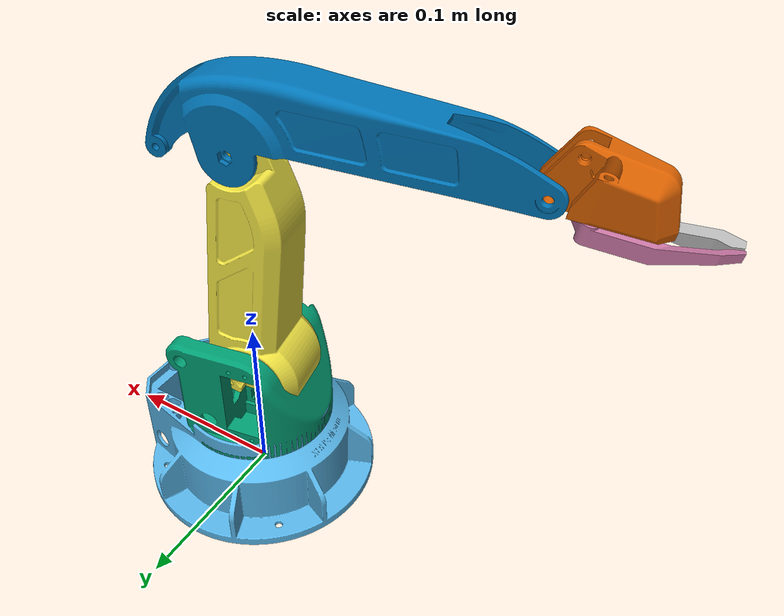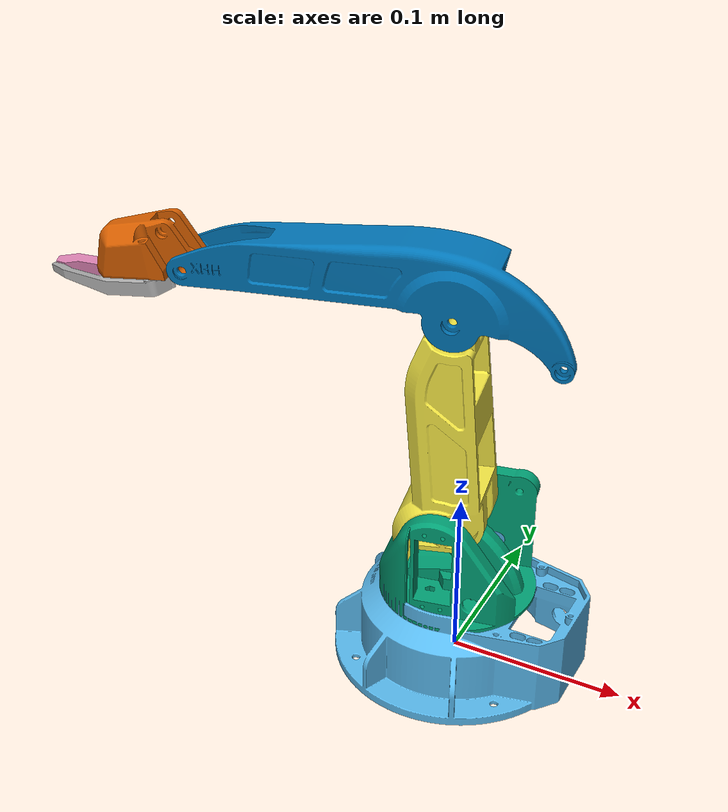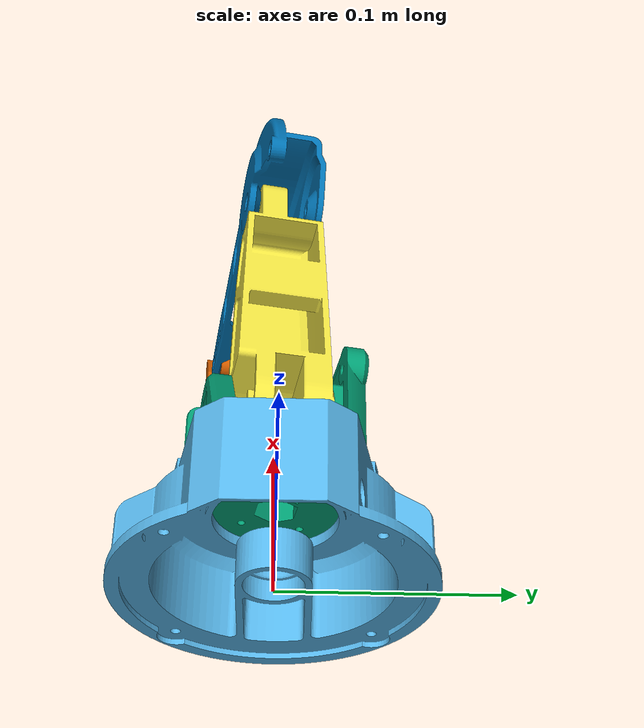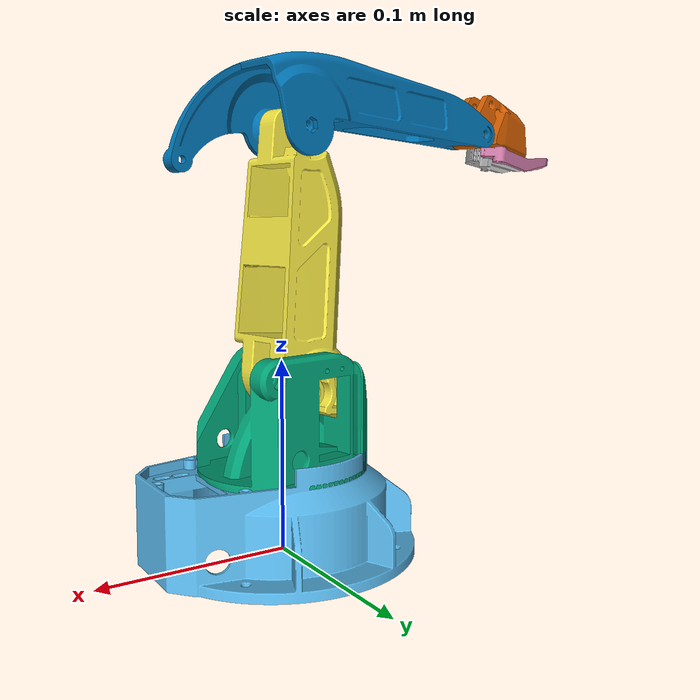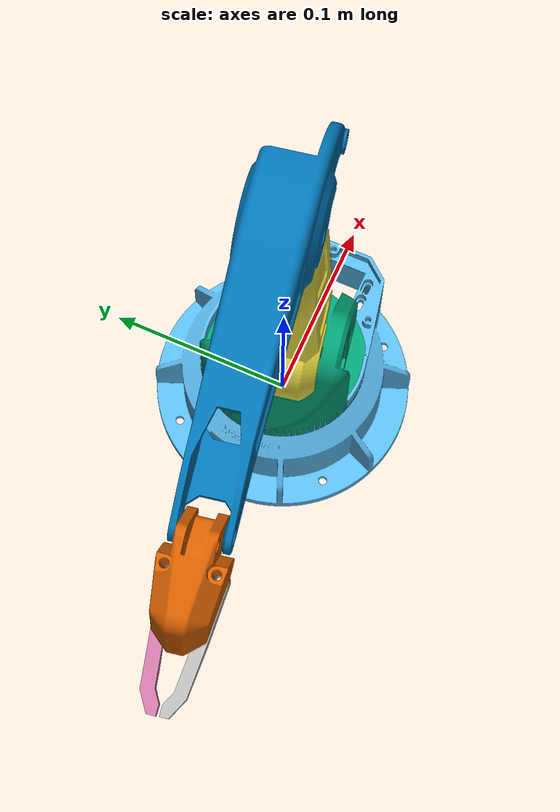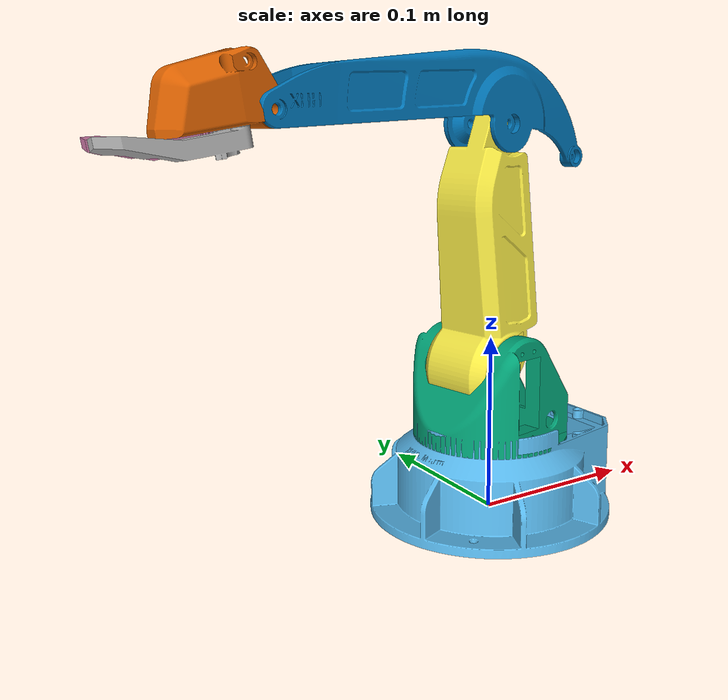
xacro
<?xml version="1.0"?>
<robot xmlns:xacro="http://www.ros.org/wiki/xacro" name="Robot_Arm_Urdf">
    <xacro:arg name="initial_positions_file" default="initial_positions.yaml" />

    <!-- Import Robot_Arm_Urdf urdf file -->
    <xacro:include filename="$(find dolphin_arm_description)/urdf/robot_arm_moveit_urdf.urdf.xacro" />

    <!-- Import control_xacro -->
    <xacro:include filename="Robot_Arm_Urdf.ros2_control.xacro" />

    <xacro:Robot_Arm_Urdf_ros2_control name="FakeSystem" initial_positions_file="$(arg initial_positions_file)"/>

</robot>

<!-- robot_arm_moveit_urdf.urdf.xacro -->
<robot name="Robot_Arm_Urdf" xmlns:xacro="http://www.ros.org/wiki/xacro">
    <xacro:property name="pkg_share" value="$(find dolphin_arm_description)"/>

    <link name="base_link"/>
    <link name="Fixed_Base">
        <inertial>
            <origin xyz="-0.0023084211370622484 0.0228471808858331 6.92692255730673e-05" rpy="0.0 0.0 0.0" />
            <mass value="0.8445906258395853" />
            <inertia ixx="0.001221182780015992" iyy="0.002203963262386244" izz="0.0013408588392549766" ixy="-6.71713136515516e-05" iyz="4.648997523226265e-07" ixz="-3.21079034325289e-06" />
        </inertial>
        <visual name="Fixed_Base_visual">
            <origin xyz="0.0 0.0 0.0" rpy="0.0 0.0 0.0" />
            <geometry>
                <mesh filename="file://${pkg_share}/meshes/Fixed_Base.stl" scale="0.001 0.001 0.001" />
            </geometry>
        </visual>
        <collision name="Fixed_Base_collision">
            <origin xyz="0.0 0.0 0.0" rpy="0.0 0.0 0.0" />
            <geometry>
                <mesh filename="file://${pkg_share}/meshes/Fixed_Base.stl" scale="0.001 0.001 0.001" />
            </geometry>
        </collision>
    </link>
    <link name="Rotary_Base">
        <inertial>
            <origin xyz="-0.0015615202986804231 -0.001328992332780706 -0.01920587720435263" rpy="0.0 -0.0 0.0" />
            <mass value="0.7237496671944533" />
            <inertia ixx="0.0006154232686175499" iyy="0.0005865774337070231" izz="0.0006601648629478627" ixy="2.0518610349967523e-05" iyz="-3.150402130999297e-05" ixz="2.98059870092668e-06" />
        </inertial>
        <visual name="Rotary_Base_visual">
            <origin xyz="-5.610539924520725e-36 -3.029981214983867e-35 -4.440892098500626e-18" rpy="-1.5707963267948966 7.135756977348252e-17 -0.18309370107971504" />
            <geometry>
                <mesh filename="file://${pkg_share}/meshes/Rotary_Base.stl" scale="0.001 0.001 0.001" />
            </geometry>
        </visual>
        <collision name="Rotary_Base_collision">
            <origin xyz="-5.610539924520725e-36 -3.029981214983867e-35 -4.440892098500626e-18" rpy="-1.5707963267948966 7.135756977348252e-17 -0.18309370107971504" />
            <geometry>
                <mesh filename="file://${pkg_share}/meshes/Rotary_Base.stl" scale="0.001 0.001 0.001" />
            </geometry>
        </collision>
    </link>
    <link name="BC_Connecting_Rod">
        <inertial>
            <origin xyz="-0.003108924053050823 -0.05263309481890554 0.0041842438499858905" rpy="0.0 -0.0 6.842277657836022e-49" />
            <mass value="0.5964512737032673" />
            <inertia ixx="0.0012764161078618083" iyy="0.00020379133939243596" izz="0.001277911473220979" ixy="5.687611563770023e-05" iyz="-4.278345856768043e-05" ixz="-5.486724258847872e-06" />
        </inertial>
        <visual name="BC_Connecting_Rod_visual">
            <origin xyz="0.02371112247245582 0.007750841859894547 0.008255124743926711" rpy="-3.124568190204759 -0.18230932297418448 -0.09363604842235623" />
            <geometry>
                <mesh filename="file://${pkg_share}/meshes/BC_Connecting_Rod.stl" scale="0.001 0.001 0.001" />
            </geometry>
        </visual>
        <collision name="BC_Connecting_Rod_collision">
            <origin xyz="0.02371112247245582 0.007750841859894547 0.008255124743926711" rpy="-3.124568190204759 -0.18230932297418448 -0.09363604842235623" />
            <geometry>
                <mesh filename="file://${pkg_share}/meshes/BC_Connecting_Rod.stl" scale="0.001 0.001 0.001" />
            </geometry>
        </collision>
    </link>
    <link name="CD_Connecting_Rod">
        <inertial>
            <origin xyz="-0.043559909338132134 -0.01570210243946864 0.002357811998792022" rpy="0.0 -0.0 -1.1025154429130312e-50" />
            <mass value="0.38035323841887764" />
            <inertia ixx="0.0001466140749163853" iyy="0.0011098258871812708" izz="0.001099201585227943" ixy="-8.06306855520316e-06" iyz="4.517096606287421e-06" ixz="-0.00013980161103425843" />
        </inertial>
        <visual name="CD_Connecting_Rod_visual">
            <origin xyz="-0.002093835489015721 -4.437625165110148e-09 0.01130777937614194" rpy="3.115278537333742 -0.18121387124067598 0.14501660597162674" />
            <geometry>
                <mesh filename="file://${pkg_share}/meshes/CD_Connecting_Rod.stl" scale="0.001 0.001 0.001" />
            </geometry>
        </visual>
        <collision name="CD_Connecting_Rod_collision">
            <origin xyz="-0.002093835489015721 -4.437625165110148e-09 0.01130777937614194" rpy="3.115278537333742 -0.18121387124067598 0.14501660597162674" />
            <geometry>
                <mesh filename="file://${pkg_share}/meshes/CD_Connecting_Rod.stl" scale="0.001 0.001 0.001" />
            </geometry>
        </collision>
    </link>
    <link name="Jaw_Bracket">
        <inertial>
            <origin xyz="-0.021907773199217183 0.004689907108476632 -0.005102817148829497" rpy="0.0 -0.0 0.0" />
            <mass value="0.1350457076334148" />
            <inertia ixx="1.9060368377022026e-05" iyy="4.042807112170435e-05" izz="4.0430870364380534e-05" ixy="-1.433287247806608e-06" iyz="2.895109639693751e-07" ixz="4.120653207107895e-06" />
        </inertial>
        <visual name="Jaw_Bracket_visual">
            <origin xyz="-0.001638650783727602 2.1942422989695844e-09 -0.008849561253332782" rpy="0.03000454182392912 0.18064563548065074 0.16552462841019228" />
            <geometry>
                <mesh filename="file://${pkg_share}/meshes/Jaw_Bracket.stl" scale="0.001 0.001 0.001" />
            </geometry>
        </visual>
        <collision name="Jaw_Bracket_collision">
            <origin xyz="-0.001638650783727602 2.1942422989695844e-09 -0.008849561253332782" rpy="0.03000454182392912 0.18064563548065074 0.16552462841019228" />
            <geometry>
                <mesh filename="file://${pkg_share}/meshes/Jaw_Bracket.stl" scale="0.001 0.001 0.001" />
            </geometry>
        </collision>
    </link>
    <link name="Lower_Jaw_Gear">
        <inertial>
            <origin xyz="-0.01994566903661017 -0.006257307106256613 -0.006546757600873647" rpy="0.0 -0.0 0.0" />
            <mass value="0.02391751935395245" />
            <inertia ixx="8.13583175808649e-07" iyy="8.66889429058221e-06" izz="9.12194538904218e-06" ixy="-1.7799146765003775e-06" iyz="-8.16546187335024e-08" ixz="-6.606074238085009e-07" />
        </inertial>
        <visual name="Lower_Jaw_Gear_visual">
            <origin xyz="0.019451886609715016 -0.0030255381320716257 0.006136199270119747" rpy="1.5142504652606472 -0.15275332295445965 0.5392472171642942" />
            <geometry>
                <mesh filename="file://${pkg_share}/meshes/Lower_Jaw_Gear.stl" scale="0.001 0.001 0.001" />
            </geometry>
        </visual>
        <collision name="Lower_Jaw_Gear_collision">
            <origin xyz="0.019451886609715016 -0.0030255381320716257 0.006136199270119747" rpy="1.5142504652606472 -0.15275332295445965 0.5392472171642942" />
            <geometry>
                <mesh filename="file://${pkg_share}/meshes/Lower_Jaw_Gear.stl" scale="0.001 0.001 0.001" />
            </geometry>
        </collision>
    </link>
    <link name="Upper_Jaw_Gear">
        <inertial>
            <origin xyz="-0.017117827988133067 0.0006170620801580196 -0.006893256330983881" rpy="0.0 -0.0 0.0" />
            <mass value="0.029521927001507683" />
            <inertia ixx="1.0227330417347798e-06" iyy="1.085623195950613e-05" izz="1.1428807549880007e-05" ixy="-1.9300050527417568e-06" iyz="-7.631472057200849e-08" ixz="-5.122815024850975e-07" />
        </inertial>
        <visual name="Upper_Jaw_Gear_visual">
            <origin xyz="0.018090653972982144 0.010336634861097488 0.007284660363346909" rpy="1.6049260695089245 -0.15922035143411778 -0.0290144888006152" />
            <geometry>
                <mesh filename="file://${pkg_share}/meshes/Upper_Jaw_Gear.stl" scale="0.001 0.001 0.001" />
            </geometry>
        </visual>
        <collision name="Upper_Jaw_Gear_collision">
            <origin xyz="0.018090653972982144 0.010336634861097488 0.007284660363346909" rpy="1.6049260695089245 -0.15922035143411778 -0.0290144888006152" />
            <geometry>
                <mesh filename="file://${pkg_share}/meshes/Upper_Jaw_Gear.stl" scale="0.001 0.001 0.001" />
            </geometry>
        </collision>
    </link>

    <joint name="base_to_fixed" type="fixed">
        <parent link="base_link"/>
        <child  link="Fixed_Base"/>
        <origin xyz="0 0 0" rpy="1.5708 0 0"/>
    </joint>
    <joint name="Fixed_Base_rot_1" type="revolute">
        <origin xyz="0.0 0.040999999999999995 0.0" rpy="1.5707963267948966 -0.0 0.0" />
        <parent link="Fixed_Base" />
        <child link="Rotary_Base" />
        <axis xyz="0.0 0.0 1.0" />
        <limit lower="-1.570796" upper="1.570796" effort="1000000" velocity="1000000" />
    </joint>
    <joint name="Rotary_Base_rot_2" type="revolute">
        <origin xyz="-0.0061911200000000005 0.00501099 -0.04300000000000001" rpy="1.5707963267948966 -4.622231866529367e-33 2.775557561562892e-17" />
        <parent link="Rotary_Base" />
        <child link="BC_Connecting_Rod" />
        <axis xyz="-0.182072 -5.610526669351565e-34 0.9832849999999999" />
        <limit lower="-1.308997" upper="0.349066" effort="1000000" velocity="1000000" />
    </joint>
    <joint name="BC_Connecting_Rod_rot_3" type="revolute">
        <origin xyz="0.0029697100000000004 -0.13499058 -0.007281" rpy="-3.6111186457260694e-34 -0.0 1.431146867680866e-17" />
        <parent link="BC_Connecting_Rod" />
        <child link="CD_Connecting_Rod" />
        <axis xyz="-0.182072 2.3688342953853695e-18 0.9832849999999999" />
        <limit lower="-0.698132" upper="0.959931" effort="1000000" velocity="1000000" />
    </joint>
    <joint name="CD_Connecting_Rod_rigidity_4" type="fixed">
        <origin xyz="-0.14283212000000003 -0.0056524100000000035 -0.024413860000000013" rpy="-3.141592653589793 -2.775557561562892e-17 1.2576745200831845e-17" />
        <parent link="CD_Connecting_Rod" />
        <child link="Jaw_Bracket" />
    </joint>
    <joint name="Jaw_Bracket_rot_6" type="revolute">
        <origin xyz="-0.017155430000000003 -0.006980299999999993 0.005210629999999998" rpy="-1.5707963267948966 -2.7755575615628926e-17 2.6020852139652106e-17" />
        <parent link="Jaw_Bracket" />
        <child link="Upper_Jaw_Gear" />
        <axis xyz="-0.15937899999999997 -0.029511999999999997 0.986776" />
        <limit lower="-0.017" upper="0.8" effort="1000000" velocity="1000000"/>
    </joint>
    <joint name="Jaw_Bracket_rot_9" type="revolute">
        <origin xyz="-0.021161020000000016 -0.006980299999999993 -0.016421640000000008" rpy="-1.5707963267948966 -2.7755575615628926e-17 2.6020852139652106e-17" />
        <parent link="Jaw_Bracket" />
        <child link="Lower_Jaw_Gear" />
        <axis xyz="-0.15937899999999997 -0.029511999999999997 0.986776" />
        <mimic joint="Jaw_Bracket_rot_6" multiplier="-1.0" offset="0.0"/>
        <limit lower="-0.8" upper="0.017" effort="1000000" velocity="1000000"/>
    </joint>

</robot>
